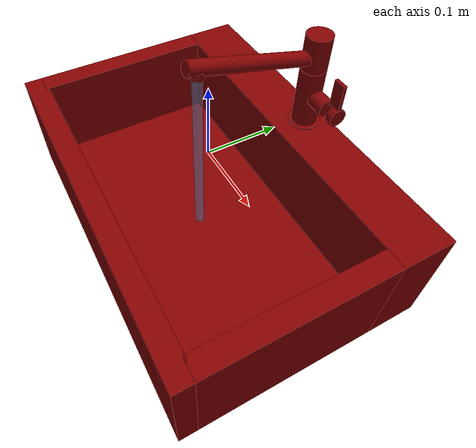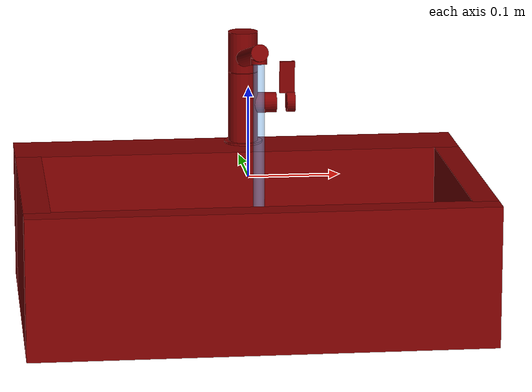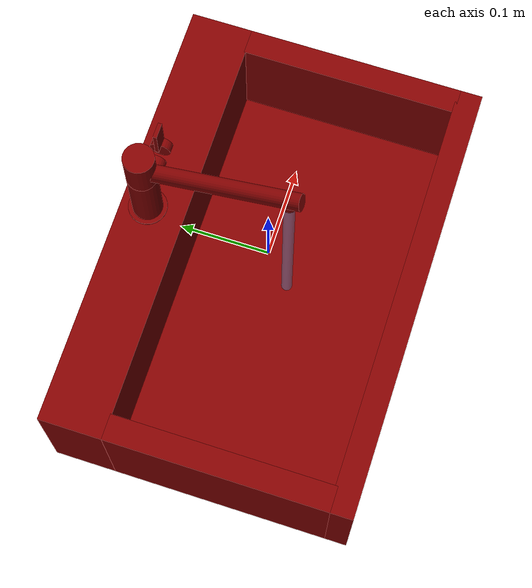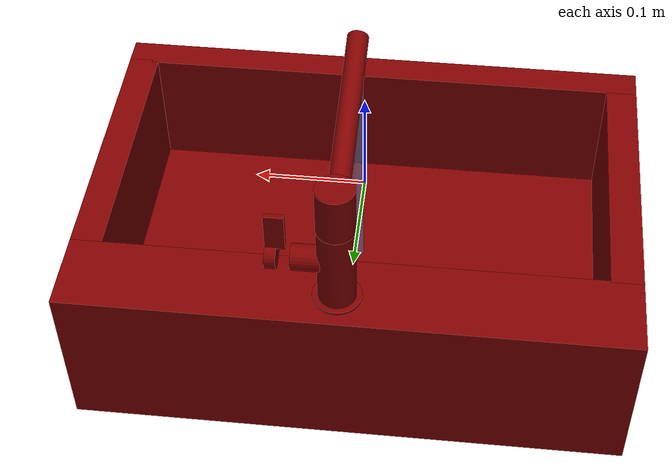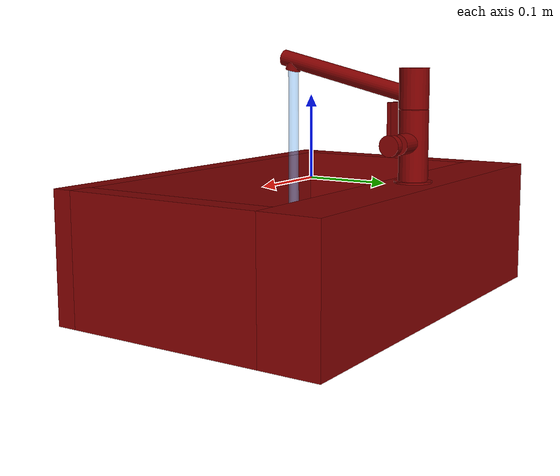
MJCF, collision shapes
<?xml version='1.0' encoding='UTF-8'?>
<mujoco model="model">
  <option timestep="0.002" gravity="0.0 0.0 -9.81"/>
  <compiler angle="radian"/>
  <asset>
    <mesh file="visuals/handle.obj" name="handle_vis"/>
    <mesh file="visuals/Body001.obj" name="Body001_vis"/>
    <mesh file="visuals/spout.obj" name="spout_vis"/>
    <texture file="visuals/T_BC001.png" name="Body001_material" type="2d"/>
    <material name="Body001_material" rgba="1 1 1 1.0" texture="Body001_material" shininess="0.1" specular="0.9"/>
    <texture file="visuals/T_BC001.png" name="handle_material" type="2d"/>
    <material name="handle_material" rgba="1 1 1 1.0" texture="handle_material" shininess="0.1" specular="0.9"/>
    <texture file="visuals/T_BC001.png" name="spout_material" type="2d"/>
    <material name="spout_material" rgba="1 1 1 1.0" texture="spout_material" shininess="0.1" specular="0.9"/>
  </asset>
  <default>
    <default class="visual">
      <geom conaffinity="0" contype="0" group="1" type="mesh"/>
    </default>
    <default class="collision">
      <geom group="0" rgba="0.5 0 0 0.5" solimp="0.998 0.998 0.001" solref="0.001 2"/>
    </default>
    <default class="spawn">
      <geom group="0" rgba="1 1 1 0.5" contype="0" conaffinity="0"/>
      <site group="0" rgba="1 1 1 0.5"/>
    </default>
    <default class="region">
      <geom group="1" conaffinity="0" contype="0" rgba="0 1 0 0"/>
    </default>
  </default>
  <worldbody>
    <body>
      <body name="object">
        <geom mesh="Body001_vis" type="mesh" solimp="0.998 0.998 0.001" solref="0.001 1" friction="0.95 0.3 0.1" class="visual" material="Body001_material"/>
        <geom class="collision" type="box" pos="-0.23772106 -0.02300256 -0.07468699" size="0.014510942623019218 0.12475115060806274 0.07784749567508698" quat="1.0 0.0 0.0 0.0"/>
        <geom class="collision" type="box" pos="0.23797293 -0.02300256 -0.07468706" size="0.014259055256843567 0.12475115060806274 0.07784754037857056" quat="1.0 0.0 0.0 0.0"/>
        <geom class="collision" type="box" pos="-0.00000003 -0.15880519 -0.07468698" size="0.25223180651664734 0.01404684130102396 0.0778474286198616" quat="1.0 0.0 0.0 0.0"/>
        <geom class="collision" type="box" pos="0.00000000 0.13644713 -0.07468702" size="0.25223198533058167 0.036404892802238464 0.07784749567508698" quat="1.0 0.0 0.0 0.0"/>
        <geom class="collision" type="box" pos="0.00093302 -0.02184296 -0.13492787" size="0.23147781193256378 0.12458086013793945 0.017606688663363457" quat="1.0 0.0 0.0 0.0"/>
        <geom class="collision" type="cylinder" pos="0.00918474 0.14215718 0.04660571" size="0.016879526898264885 0.04095381125807762" quat="1.0 0.0 0.0 0.0"/>
        <geom class="collision" type="cylinder" pos="0.03368750 0.14221203 0.05075940" size="0.011549532413482666 0.013307765126228333" quat="0.7071068286895752 1.2101618374060763e-08 0.7071067690849304 -1.2101617485882343e-08"/>
        <geom class="collision" type="cylinder" pos="0.00918474 0.14215718 0.00640604" size="0.021738331764936447 0.0010754705872386694" quat="1.0 0.0 0.0 0.0"/>
        <body name="handle">
          <joint axis="1.0 0.0 0.0" pos="0.05730124 0.14220385 0.05079991" limited="true" name="handle_temp_joint" type="hinge" range="-0.7853981633974483 0.7853981633974483" damping="0.5" frictionloss="1" armature="2"/>
          <joint axis="0.0 1.0 0.0" pos="0.05730124 0.14220385 0.05079991" limited="true" name="handle_joint" type="hinge" range="0 0.5" damping="0.5" frictionloss="1" armature="2"/>
          <geom mesh="handle_vis" type="mesh" solimp="0.998 0.998 0.001" solref="0.001 1" friction="0.95 0.3 0.1" class="visual" material="handle_material"/>
          <geom class="collision" type="cylinder" pos="0.06360026 0.14220779 0.05095486" size="0.011701474897563457 0.004833890125155449" quat="0.7071068286895752 1.2101618374060763e-08 0.7071067690849304 -1.2101617485882343e-08"/>
          <geom name="handle_main" class="collision" type="box" pos="0.05970829 0.14213997 0.07965989" size="0.008623363450169563 0.0021922399755567312 0.01824047788977623" quat="1.0 0.0 0.0 0.0"/>
        </body>
        <body name="spout">
          <joint axis="0.0 0.0 1.0" pos="0.00915049 0.14252326 0.12011796" limited="true" name="spout_joint" range="-1.0471975511965976 1.0471975511965976" type="hinge" damping="10"/>
          <site type="cylinder" rgba="0.5 0.75 1 0.5" size="0.006188038736581802 0.14014987647533417" pos="0.00961889 -0.01919011 0.00266365" name="water"/>
          <geom mesh="spout_vis" type="mesh" solimp="0.998 0.998 0.001" solref="0.001 1" friction="0.95 0.3 0.1" class="visual" material="spout_material"/>
          <geom class="collision" type="cylinder" pos="0.00918474 0.14215718 0.11106409" size="0.016879526898264885 0.02276490069925785" quat="1.0 0.0 0.0 0.0"/>
          <geom class="collision" type="cylinder" pos="0.00951227 -0.01885637 0.13429490" size="0.009006990119814873 0.005185999907553196" quat="0.9933034181594849 -0.11553489416837692 2.5653901585033782e-17 2.2124062612324436e-25"/>
          <geom class="collision" type="cylinder" pos="0.00930840 0.05364878 0.12369581" size="0.009486191906034946 0.08825498819351196" quat="0.7863112092018127 0.6178306341171265 1.3787394833963642e-16 -5.428317969163662e-19" name="spout_main"/>
        </body>
        <geom class="region" name="reg_basin" type="box" pos="0.00021480499999999847 -0.022554635000000003 -0.05700162" size="0.219095875 0.11784802500000001 0.055977280000000004"/>
        <geom class="region" name="reg_main" type="box" pos="-4.999999997368221e-09 -4.999999997368221e-09 -0.074687" size="0.253231985 0.173851995 0.07884751000000001"/>
      </body>
    </body>
  </worldbody>
  <actuator>
    <motor name="handle_joint_actuator" joint="handle_joint" gear="10"/>
    <motor name="handle_temp_joint_actuator" joint="handle_temp_joint" gear="10"/>
    <motor name="spout_joint_actuator" joint="spout_joint" gear="10"/>
  </actuator>
</mujoco>
